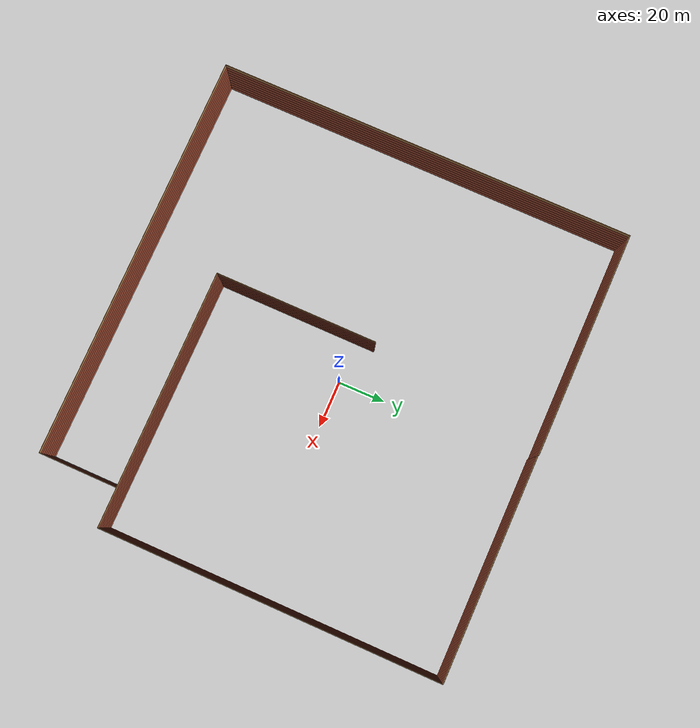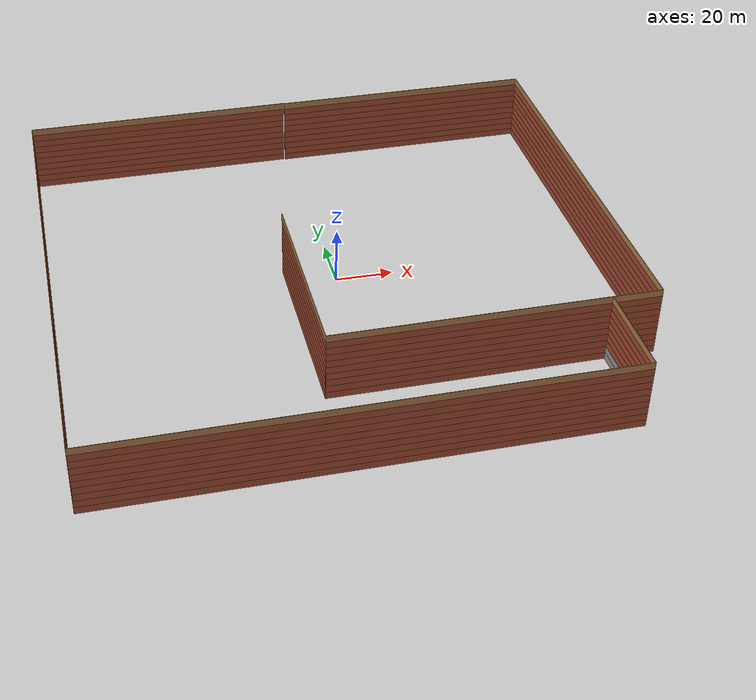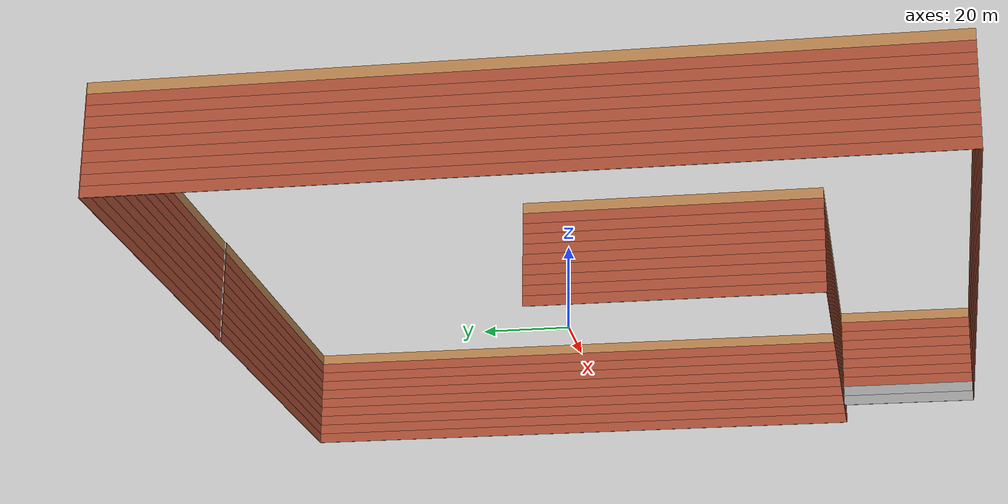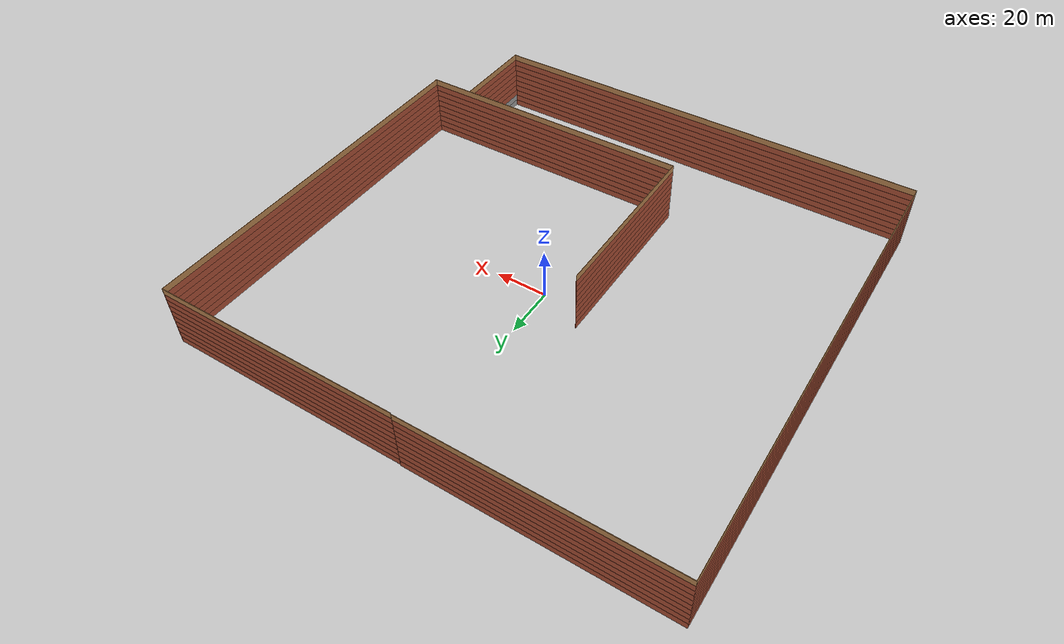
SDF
<?xml version='1.0'?>
<sdf version='1.6'>
  <model name='Prototipo_paredes'>
    <pose frame=''>-2.99252 -5.23308 0 0 -0 0</pose>

    <link name='Wall_147'>
      <collision name='Wall_147_Collision'>
        <geometry>
          <box>
            <size>96 0.15 2.5</size>
          </box>
        </geometry>
        <pose frame=''>0 0 1.25 0 -0 0</pose>
      </collision>
      <visual name='Wall_147_Visual'>
        <pose frame=''>0 0 1.25 0 -0 0</pose>
        <geometry>
          <box>
            <size>96 0.15 2.5</size>
          </box>
        </geometry>
        <material>
          <script>
            <uri>file://media/materials/scripts/gazebo.material</uri>
            <name>Gazebo/Bricks</name>
          </script>
          <ambient>1 1 1 1</ambient>
        </material>
        <meta>
          <layer>0</layer>
        </meta>
      </visual>
      <pose frame=''>-47.1757 88.925 0 0 -0 3.14159</pose>
    </link>
    <link name='Wall_148'>
      <collision name='Wall_148_Collision'>
        <geometry>
          <box>
            <size>178 0.15 2.5</size>
          </box>
        </geometry>
        <pose frame=''>0 0 1.25 0 -0 0</pose>
      </collision>
      <visual name='Wall_148_Visual'>
        <pose frame=''>0 0 1.25 0 -0 0</pose>
        <geometry>
          <box>
            <size>178 0.15 2.5</size>
          </box>
        </geometry>
        <material>
          <script>
            <uri>file://media/materials/scripts/gazebo.material</uri>
            <name>Gazebo/Bricks</name>
          </script>
          <ambient>1 1 1 1</ambient>
        </material>
        <meta>
          <layer>0</layer>
        </meta>
      </visual>
      <pose frame=''>-95.1007 -3e-06 0 0 -0 -1.5708</pose>
    </link>
    <link name='Wall_149'>
      <collision name='Wall_149_Collision'>
        <geometry>
          <box>
            <size>173.5 0.15 2.5</size>
          </box>
        </geometry>
        <pose frame=''>0 0 1.25 0 -0 0</pose>
      </collision>
      <visual name='Wall_149_Visual'>
        <pose frame=''>0 0 1.25 0 -0 0</pose>
        <geometry>
          <box>
            <size>173.5 0.15 2.5</size>
          </box>
        </geometry>
        <material>
          <script>
            <uri>file://media/materials/scripts/gazebo.material</uri>
            <name>Gazebo/Bricks</name>
          </script>
          <ambient>1 1 1 1</ambient>
        </material>
        <meta>
          <layer>0</layer>
        </meta>
      </visual>
      <pose frame=''>-8.42566 -88.925 0 0 -0 0</pose>
    </link>
    <link name='Wall_150'>
      <collision name='Wall_150_Collision'>
        <geometry>
          <box>
            <size>33.25 0.15 2.5</size>
          </box>
        </geometry>
        <pose frame=''>0 0 1.25 0 -0 0</pose>
      </collision>
      <visual name='Wall_150_Visual'>
        <pose frame=''>0 0 1.25 0 -0 0</pose>
        <geometry>
          <box>
            <size>33.25 0.15 2.5</size>
          </box>
        </geometry>
        <material>
          <script>
            <uri>file://media/materials/scripts/gazebo.material</uri>
            <name>Gazebo/Grey</name>
          </script>
          <ambient>1 1 1 1</ambient>
        </material>
        <meta>
          <layer>0</layer>
        </meta>
      </visual>
      <pose frame=''>78.2493 -72.375 0 0 -0 1.5708</pose>
    </link>
    <link name='Wall_256'>
      <collision name='Wall_256_Collision'>
        <geometry>
          <box>
            <size>69 0.15 2.5</size>
          </box>
        </geometry>
        <pose frame=''>0 0 1.25 0 -0 0</pose>
      </collision>
      <visual name='Wall_256_Visual'>
        <pose frame=''>0 0 1.25 0 -0 0</pose>
        <geometry>
          <box>
            <size>69 0.15 2.5</size>
          </box>
        </geometry>
        <material>
          <script>
            <uri>file://media/materials/scripts/gazebo.material</uri>
            <name>Gazebo/Bricks</name>
          </script>
          <ambient>1 1 1 1</ambient>
        </material>
        <meta>
          <layer>1</layer>
        </meta>
      </visual>
      <pose frame=''>-14.4993 -21.2575 2.5 0 -0 -1.5708</pose>
    </link>
    <link name='Wall_257'>
      <collision name='Wall_257_Collision'>
        <geometry>
          <box>
            <size>109.75 0.15 2.5</size>
          </box>
        </geometry>
        <pose frame=''>0 0 1.25 0 -0 0</pose>
      </collision>
      <visual name='Wall_257_Visual'>
        <pose frame=''>0 0 1.25 0 -0 0</pose>
        <geometry>
          <box>
            <size>109.75 0.15 2.5</size>
          </box>
        </geometry>
        <material>
          <script>
            <uri>file://media/materials/scripts/gazebo.material</uri>
            <name>Gazebo/Bricks</name>
          </script>
          <ambient>1 1 1 1</ambient>
        </material>
        <meta>
          <layer>1</layer>
        </meta>
      </visual>
      <pose frame=''>40.3007 -55.6825 2.5 0 -0 0</pose>
    </link>
    <link name='Wall_258'>
      <collision name='Wall_258_Collision'>
        <geometry>
          <box>
            <size>144.5 0.15 2.5</size>
          </box>
        </geometry>
        <pose frame=''>0 0 1.25 0 -0 0</pose>
      </collision>
      <visual name='Wall_258_Visual'>
        <pose frame=''>0 0 1.25 0 -0 0</pose>
        <geometry>
          <box>
            <size>144.5 0.15 2.5</size>
          </box>
        </geometry>
        <material>
          <script>
            <uri>file://media/materials/scripts/gazebo.material</uri>
            <name>Gazebo/Bricks</name>
          </script>
          <ambient>1 1 1 1</ambient>
        </material>
        <meta>
          <layer>1</layer>
        </meta>
      </visual>
      <pose frame=''>95.1007 16.4925 2.5 0 -0 1.5708</pose>
    </link>
    <link name='Wall_259'>
      <collision name='Wall_259_Collision'>
        <geometry>
          <box>
            <size>94 0.15 2.5</size>
          </box>
        </geometry>
        <pose frame=''>0 0 1.25 0 -0 0</pose>
      </collision>
      <visual name='Wall_259_Visual'>
        <pose frame=''>0 0 1.25 0 -0 0</pose>
        <geometry>
          <box>
            <size>94 0.15 2.5</size>
          </box>
        </geometry>
        <material>
          <script>
            <uri>file://media/materials/scripts/gazebo.material</uri>
            <name>Gazebo/Bricks</name>
          </script>
          <ambient>1 1 1 1</ambient>
        </material>
        <meta>
          <layer>1</layer>
        </meta>
      </visual>
      <pose frame=''>48.1757 88.6675 2.5 0 -0 3.14159</pose>
    </link>
    <link name='Wall_260'>
      <collision name='Wall_260_Collision'>
        <geometry>
          <box>
            <size>96 0.15 2.5</size>
          </box>
        </geometry>
        <pose frame=''>0 0 1.25 0 -0 0</pose>
      </collision>
      <visual name='Wall_260_Visual'>
        <pose frame=''>0 0 1.25 0 -0 0</pose>
        <geometry>
          <box>
            <size>96 0.15 2.5</size>
          </box>
        </geometry>
        <material>
          <script>
            <uri>file://media/materials/scripts/gazebo.material</uri>
            <name>Gazebo/Bricks</name>
          </script>
          <ambient>1 1 1 1</ambient>
        </material>
        <meta>
          <layer>1</layer>
        </meta>
      </visual>
      <pose frame=''>-47.1757 88.925 2.5 0 -0 3.14159</pose>
    </link>
    <link name='Wall_261'>
      <collision name='Wall_261_Collision'>
        <geometry>
          <box>
            <size>178 0.15 2.5</size>
          </box>
        </geometry>
        <pose frame=''>0 0 1.25 0 -0 0</pose>
      </collision>
      <visual name='Wall_261_Visual'>
        <pose frame=''>0 0 1.25 0 -0 0</pose>
        <geometry>
          <box>
            <size>178 0.15 2.5</size>
          </box>
        </geometry>
        <material>
          <script>
            <uri>file://media/materials/scripts/gazebo.material</uri>
            <name>Gazebo/Bricks</name>
          </script>
          <ambient>1 1 1 1</ambient>
        </material>
        <meta>
          <layer>1</layer>
        </meta>
      </visual>
      <pose frame=''>-95.1007 -2e-06 2.5 0 -0 -1.5708</pose>
    </link>
    <link name='Wall_262'>
      <collision name='Wall_262_Collision'>
        <geometry>
          <box>
            <size>173.5 0.15 2.5</size>
          </box>
        </geometry>
        <pose frame=''>0 0 1.25 0 -0 0</pose>
      </collision>
      <visual name='Wall_262_Visual'>
        <pose frame=''>0 0 1.25 0 -0 0</pose>
        <geometry>
          <box>
            <size>173.5 0.15 2.5</size>
          </box>
        </geometry>
        <material>
          <script>
            <uri>file://media/materials/scripts/gazebo.material</uri>
            <name>Gazebo/Bricks</name>
          </script>
          <ambient>1 1 1 1</ambient>
        </material>
        <meta>
          <layer>1</layer>
        </meta>
      </visual>
      <pose frame=''>-8.42566 -88.925 2.5 0 -0 0</pose>
    </link>
    <link name='Wall_263'>
      <collision name='Wall_263_Collision'>
        <geometry>
          <box>
            <size>33.25 0.15 2.5</size>
          </box>
        </geometry>
        <pose frame=''>0 0 1.25 0 -0 0</pose>
      </collision>
      <visual name='Wall_263_Visual'>
        <pose frame=''>0 0 1.25 0 -0 0</pose>
        <geometry>
          <box>
            <size>33.25 0.15 2.5</size>
          </box>
        </geometry>
        <material>
          <script>
            <uri>file://media/materials/scripts/gazebo.material</uri>
            <name>Gazebo/Grey</name>
          </script>
          <ambient>1 1 1 1</ambient>
        </material>
        <meta>
          <layer>1</layer>
        </meta>
      </visual>
      <pose frame=''>78.2493 -72.375 2.5 0 -0 1.5708</pose>
    </link>
    <link name='Wall_264'>
      <collision name='Wall_264_Collision'>
        <geometry>
          <box>
            <size>69 0.15 2.5</size>
          </box>
        </geometry>
        <pose frame=''>0 0 1.25 0 -0 0</pose>
      </collision>
      <visual name='Wall_264_Visual'>
        <pose frame=''>0 0 1.25 0 -0 0</pose>
        <geometry>
          <box>
            <size>69 0.15 2.5</size>
          </box>
        </geometry>
        <material>
          <script>
            <uri>file://media/materials/scripts/gazebo.material</uri>
            <name>Gazebo/Bricks</name>
          </script>
          <ambient>1 1 1 1</ambient>
        </material>
        <meta>
          <layer>2</layer>
        </meta>
      </visual>
      <pose frame=''>-14.4993 -21.2575 5 0 -0 -1.5708</pose>
    </link>
    <link name='Wall_265'>
      <collision name='Wall_265_Collision'>
        <geometry>
          <box>
            <size>109.75 0.15 2.5</size>
          </box>
        </geometry>
        <pose frame=''>0 0 1.25 0 -0 0</pose>
      </collision>
      <visual name='Wall_265_Visual'>
        <pose frame=''>0 0 1.25 0 -0 0</pose>
        <geometry>
          <box>
            <size>109.75 0.15 2.5</size>
          </box>
        </geometry>
        <material>
          <script>
            <uri>file://media/materials/scripts/gazebo.material</uri>
            <name>Gazebo/Bricks</name>
          </script>
          <ambient>1 1 1 1</ambient>
        </material>
        <meta>
          <layer>2</layer>
        </meta>
      </visual>
      <pose frame=''>40.3007 -55.6825 5 0 -0 0</pose>
    </link>
    <link name='Wall_266'>
      <collision name='Wall_266_Collision'>
        <geometry>
          <box>
            <size>144.5 0.15 2.5</size>
          </box>
        </geometry>
        <pose frame=''>0 0 1.25 0 -0 0</pose>
      </collision>
      <visual name='Wall_266_Visual'>
        <pose frame=''>0 0 1.25 0 -0 0</pose>
        <geometry>
          <box>
            <size>144.5 0.15 2.5</size>
          </box>
        </geometry>
        <material>
          <script>
            <uri>file://media/materials/scripts/gazebo.material</uri>
            <name>Gazebo/Bricks</name>
          </script>
          <ambient>1 1 1 1</ambient>
        </material>
        <meta>
          <layer>2</layer>
        </meta>
      </visual>
      <pose frame=''>95.1007 16.4925 5 0 -0 1.5708</pose>
    </link>
    <link name='Wall_267'>
      <collision name='Wall_267_Collision'>
        <geometry>
          <box>
            <size>94 0.15 2.5</size>
          </box>
        </geometry>
        <pose frame=''>0 0 1.25 0 -0 0</pose>
      </collision>
      <visual name='Wall_267_Visual'>
        <pose frame=''>0 0 1.25 0 -0 0</pose>
        <geometry>
          <box>
            <size>94 0.15 2.5</size>
          </box>
        </geometry>
        <material>
          <script>
            <uri>file://media/materials/scripts/gazebo.material</uri>
            <name>Gazebo/Bricks</name>
          </script>
          <ambient>1 1 1 1</ambient>
        </material>
        <meta>
          <layer>2</layer>
        </meta>
      </visual>
      <pose frame=''>48.1757 88.6675 5 0 -0 3.14159</pose>
    </link>
    <link name='Wall_268'>
      <collision name='Wall_268_Collision'>
        <geometry>
          <box>
            <size>96 0.15 2.5</size>
          </box>
        </geometry>
        <pose frame=''>0 0 1.25 0 -0 0</pose>
      </collision>
      <visual name='Wall_268_Visual'>
        <pose frame=''>0 0 1.25 0 -0 0</pose>
        <geometry>
          <box>
            <size>96 0.15 2.5</size>
          </box>
        </geometry>
        <material>
          <script>
            <uri>file://media/materials/scripts/gazebo.material</uri>
            <name>Gazebo/Bricks</name>
          </script>
          <ambient>1 1 1 1</ambient>
        </material>
        <meta>
          <layer>2</layer>
        </meta>
      </visual>
      <pose frame=''>-47.1757 88.925 5 0 -0 3.14159</pose>
    </link>
    <link name='Wall_269'>
      <collision name='Wall_269_Collision'>
        <geometry>
          <box>
            <size>178 0.15 2.5</size>
          </box>
        </geometry>
        <pose frame=''>0 0 1.25 0 -0 0</pose>
      </collision>
      <visual name='Wall_269_Visual'>
        <pose frame=''>0 0 1.25 0 -0 0</pose>
        <geometry>
          <box>
            <size>178 0.15 2.5</size>
          </box>
        </geometry>
        <material>
          <script>
            <uri>file://media/materials/scripts/gazebo.material</uri>
            <name>Gazebo/Bricks</name>
          </script>
          <ambient>1 1 1 1</ambient>
        </material>
        <meta>
          <layer>2</layer>
        </meta>
      </visual>
      <pose frame=''>-95.1007 -2e-06 5 0 -0 -1.5708</pose>
    </link>
    <link name='Wall_270'>
      <collision name='Wall_270_Collision'>
        <geometry>
          <box>
            <size>173.5 0.15 2.5</size>
          </box>
        </geometry>
        <pose frame=''>0 0 1.25 0 -0 0</pose>
      </collision>
      <visual name='Wall_270_Visual'>
        <pose frame=''>0 0 1.25 0 -0 0</pose>
        <geometry>
          <box>
            <size>173.5 0.15 2.5</size>
          </box>
        </geometry>
        <material>
          <script>
            <uri>file://media/materials/scripts/gazebo.material</uri>
            <name>Gazebo/Bricks</name>
          </script>
          <ambient>1 1 1 1</ambient>
        </material>
        <meta>
          <layer>2</layer>
        </meta>
      </visual>
      <pose frame=''>-8.42566 -88.925 5 0 -0 0</pose>
    </link>
    <link name='Wall_271'>
      <collision name='Wall_271_Collision'>
        <geometry>
          <box>
            <size>33.25 0.15 2.5</size>
          </box>
        </geometry>
        <pose frame=''>0 0 1.25 0 -0 0</pose>
      </collision>
      <visual name='Wall_271_Visual'>
        <pose frame=''>0 0 1.25 0 -0 0</pose>
        <geometry>
          <box>
            <size>33.25 0.15 2.5</size>
          </box>
        </geometry>
        <material>
          <script>
            <uri>file://media/materials/scripts/gazebo.material</uri>
            <name>Gazebo/Bricks</name>
          </script>
          <ambient>1 1 1 1</ambient>
        </material>
        <meta>
          <layer>2</layer>
        </meta>
      </visual>
      <pose frame=''>78.2493 -72.375 5 0 -0 1.5708</pose>
    </link>
    <link name='Wall_272'>
      <collision name='Wall_272_Collision'>
        <geometry>
          <box>
            <size>69 0.15 2.5</size>
          </box>
        </geometry>
        <pose frame=''>0 0 1.25 0 -0 0</pose>
      </collision>
      <visual name='Wall_272_Visual'>
        <pose frame=''>0 0 1.25 0 -0 0</pose>
        <geometry>
          <box>
            <size>69 0.15 2.5</size>
          </box>
        </geometry>
        <material>
          <script>
            <uri>file://media/materials/scripts/gazebo.material</uri>
            <name>Gazebo/Bricks</name>
          </script>
          <ambient>1 1 1 1</ambient>
        </material>
        <meta>
          <layer>3</layer>
        </meta>
      </visual>
      <pose frame=''>-14.4993 -21.2575 7.5 0 -0 -1.5708</pose>
    </link>
    <link name='Wall_273'>
      <collision name='Wall_273_Collision'>
        <geometry>
          <box>
            <size>109.75 0.15 2.5</size>
          </box>
        </geometry>
        <pose frame=''>0 0 1.25 0 -0 0</pose>
      </collision>
      <visual name='Wall_273_Visual'>
        <pose frame=''>0 0 1.25 0 -0 0</pose>
        <geometry>
          <box>
            <size>109.75 0.15 2.5</size>
          </box>
        </geometry>
        <material>
          <script>
            <uri>file://media/materials/scripts/gazebo.material</uri>
            <name>Gazebo/Bricks</name>
          </script>
          <ambient>1 1 1 1</ambient>
        </material>
        <meta>
          <layer>3</layer>
        </meta>
      </visual>
      <pose frame=''>40.3007 -55.6825 7.5 0 -0 0</pose>
    </link>
    <link name='Wall_274'>
      <collision name='Wall_274_Collision'>
        <geometry>
          <box>
            <size>144.5 0.15 2.5</size>
          </box>
        </geometry>
        <pose frame=''>0 0 1.25 0 -0 0</pose>
      </collision>
      <visual name='Wall_274_Visual'>
        <pose frame=''>0 0 1.25 0 -0 0</pose>
        <geometry>
          <box>
            <size>144.5 0.15 2.5</size>
          </box>
        </geometry>
        <material>
          <script>
            <uri>file://media/materials/scripts/gazebo.material</uri>
            <name>Gazebo/Bricks</name>
          </script>
          <ambient>1 1 1 1</ambient>
        </material>
        <meta>
          <layer>3</layer>
        </meta>
      </visual>
      <pose frame=''>95.1007 16.4925 7.5 0 -0 1.5708</pose>
    </link>
    <link name='Wall_275'>
      <collision name='Wall_275_Collision'>
        <geometry>
          <box>
            <size>94 0.15 2.5</size>
          </box>
        </geometry>
        <pose frame=''>0 0 1.25 0 -0 0</pose>
      </collision>
      <visual name='Wall_275_Visual'>
        <pose frame=''>0 0 1.25 0 -0 0</pose>
        <geometry>
          <box>
            <size>94 0.15 2.5</size>
          </box>
        </geometry>
        <material>
          <script>
            <uri>file://media/materials/scripts/gazebo.material</uri>
            <name>Gazebo/Bricks</name>
          </script>
          <ambient>1 1 1 1</ambient>
        </material>
        <meta>
          <layer>3</layer>
        </meta>
      </visual>
      <pose frame=''>48.1757 88.6675 7.5 0 -0 3.14159</pose>
    </link>
    <link name='Wall_276'>
      <collision name='Wall_276_Collision'>
        <geometry>
          <box>
            <size>96 0.15 2.5</size>
          </box>
        </geometry>
        <pose frame=''>0 0 1.25 0 -0 0</pose>
      </collision>
      <visual name='Wall_276_Visual'>
        <pose frame=''>0 0 1.25 0 -0 0</pose>
        <geometry>
          <box>
            <size>96 0.15 2.5</size>
          </box>
        </geometry>
        <material>
          <script>
            <uri>file://media/materials/scripts/gazebo.material</uri>
            <name>Gazebo/Bricks</name>
          </script>
          <ambient>1 1 1 1</ambient>
        </material>
        <meta>
          <layer>3</layer>
        </meta>
      </visual>
      <pose frame=''>-47.1757 88.925 7.5 0 -0 3.14159</pose>
    </link>
    <link name='Wall_277'>
      <collision name='Wall_277_Collision'>
        <geometry>
          <box>
            <size>178 0.15 2.5</size>
          </box>
        </geometry>
        <pose frame=''>0 0 1.25 0 -0 0</pose>
      </collision>
      <visual name='Wall_277_Visual'>
        <pose frame=''>0 0 1.25 0 -0 0</pose>
        <geometry>
          <box>
            <size>178 0.15 2.5</size>
          </box>
        </geometry>
        <material>
          <script>
            <uri>file://media/materials/scripts/gazebo.material</uri>
            <name>Gazebo/Bricks</name>
          </script>
          <ambient>1 1 1 1</ambient>
        </material>
        <meta>
          <layer>3</layer>
        </meta>
      </visual>
      <pose frame=''>-95.1007 -2e-06 7.5 0 -0 -1.5708</pose>
    </link>
    <link name='Wall_278'>
      <collision name='Wall_278_Collision'>
        <geometry>
          <box>
            <size>173.5 0.15 2.5</size>
          </box>
        </geometry>
        <pose frame=''>0 0 1.25 0 -0 0</pose>
      </collision>
      <visual name='Wall_278_Visual'>
        <pose frame=''>0 0 1.25 0 -0 0</pose>
        <geometry>
          <box>
            <size>173.5 0.15 2.5</size>
          </box>
        </geometry>
        <material>
          <script>
            <uri>file://media/materials/scripts/gazebo.material</uri>
            <name>Gazebo/Bricks</name>
          </script>
          <ambient>1 1 1 1</ambient>
        </material>
        <meta>
          <layer>3</layer>
        </meta>
      </visual>
      <pose frame=''>-8.42566 -88.925 7.5 0 -0 0</pose>
    </link>
    <link name='Wall_279'>
      <collision name='Wall_279_Collision'>
        <geometry>
          <box>
            <size>33.25 0.15 2.5</size>
          </box>
        </geometry>
        <pose frame=''>0 0 1.25 0 -0 0</pose>
      </collision>
      <visual name='Wall_279_Visual'>
        <pose frame=''>0 0 1.25 0 -0 0</pose>
        <geometry>
          <box>
            <size>33.25 0.15 2.5</size>
          </box>
        </geometry>
        <material>
          <script>
            <uri>file://media/materials/scripts/gazebo.material</uri>
            <name>Gazebo/Bricks</name>
          </script>
          <ambient>1 1 1 1</ambient>
        </material>
        <meta>
          <layer>3</layer>
        </meta>
      </visual>
      <pose frame=''>78.2493 -72.375 7.5 0 -0 1.5708</pose>
    </link>
    <link name='Wall_280'>
      <collision name='Wall_280_Collision'>
        <geometry>
          <box>
            <size>69 0.15 2.5</size>
          </box>
        </geometry>
        <pose frame=''>0 0 1.25 0 -0 0</pose>
      </collision>
      <visual name='Wall_280_Visual'>
        <pose frame=''>0 0 1.25 0 -0 0</pose>
        <geometry>
          <box>
            <size>69 0.15 2.5</size>
          </box>
        </geometry>
        <material>
          <script>
            <uri>file://media/materials/scripts/gazebo.material</uri>
            <name>Gazebo/Bricks</name>
          </script>
          <ambient>1 1 1 1</ambient>
        </material>
        <meta>
          <layer>4</layer>
        </meta>
      </visual>
      <pose frame=''>-14.4993 -21.2575 10 0 -0 -1.5708</pose>
    </link>
    <link name='Wall_281'>
      <collision name='Wall_281_Collision'>
        <geometry>
          <box>
            <size>109.75 0.15 2.5</size>
          </box>
        </geometry>
        <pose frame=''>0 0 1.25 0 -0 0</pose>
      </collision>
      <visual name='Wall_281_Visual'>
        <pose frame=''>0 0 1.25 0 -0 0</pose>
        <geometry>
          <box>
            <size>109.75 0.15 2.5</size>
          </box>
        </geometry>
        <material>
          <script>
            <uri>file://media/materials/scripts/gazebo.material</uri>
            <name>Gazebo/Bricks</name>
          </script>
          <ambient>1 1 1 1</ambient>
        </material>
        <meta>
          <layer>4</layer>
        </meta>
      </visual>
      <pose frame=''>40.3007 -55.6825 10 0 -0 0</pose>
    </link>
    <link name='Wall_282'>
      <collision name='Wall_282_Collision'>
        <geometry>
          <box>
            <size>144.5 0.15 2.5</size>
          </box>
        </geometry>
        <pose frame=''>0 0 1.25 0 -0 0</pose>
      </collision>
      <visual name='Wall_282_Visual'>
        <pose frame=''>0 0 1.25 0 -0 0</pose>
        <geometry>
          <box>
            <size>144.5 0.15 2.5</size>
          </box>
        </geometry>
        <material>
          <script>
            <uri>file://media/materials/scripts/gazebo.material</uri>
            <name>Gazebo/Bricks</name>
          </script>
          <ambient>1 1 1 1</ambient>
        </material>
        <meta>
          <layer>4</layer>
        </meta>
      </visual>
      <pose frame=''>95.1007 16.4925 10 0 -0 1.5708</pose>
    </link>
    <link name='Wall_283'>
      <collision name='Wall_283_Collision'>
        <geometry>
          <box>
            <size>94 0.15 2.5</size>
          </box>
        </geometry>
        <pose frame=''>0 0 1.25 0 -0 0</pose>
      </collision>
      <visual name='Wall_283_Visual'>
        <pose frame=''>0 0 1.25 0 -0 0</pose>
        <geometry>
          <box>
            <size>94 0.15 2.5</size>
          </box>
        </geometry>
        <material>
          <script>
            <uri>file://media/materials/scripts/gazebo.material</uri>
            <name>Gazebo/Bricks</name>
          </script>
          <ambient>1 1 1 1</ambient>
        </material>
        <meta>
          <layer>4</layer>
        </meta>
      </visual>
      <pose frame=''>48.1757 88.6675 10 0 -0 3.14159</pose>
    </link>
    <link name='Wall_284'>
      <collision name='Wall_284_Collision'>
        <geometry>
          <box>
            <size>96 0.15 2.5</size>
          </box>
        </geometry>
        <pose frame=''>0 0 1.25 0 -0 0</pose>
      </collision>
      <visual name='Wall_284_Visual'>
        <pose frame=''>0 0 1.25 0 -0 0</pose>
        <geometry>
          <box>
            <size>96 0.15 2.5</size>
          </box>
        </geometry>
        <material>
          <script>
            <uri>file://media/materials/scripts/gazebo.material</uri>
            <name>Gazebo/Bricks</name>
          </script>
          <ambient>1 1 1 1</ambient>
        </material>
        <meta>
          <layer>4</layer>
        </meta>
      </visual>
      <pose frame=''>-47.1757 88.925 10 0 -0 3.14159</pose>
    </link>
    <link name='Wall_285'>
      <collision name='Wall_285_Collision'>
        <geometry>
          <box>
            <size>178 0.15 2.5</size>
          </box>
        </geometry>
        <pose frame=''>0 0 1.25 0 -0 0</pose>
      </collision>
      <visual name='Wall_285_Visual'>
        <pose frame=''>0 0 1.25 0 -0 0</pose>
        <geometry>
          <box>
            <size>178 0.15 2.5</size>
          </box>
        </geometry>
        <material>
          <script>
            <uri>file://media/materials/scripts/gazebo.material</uri>
            <name>Gazebo/Bricks</name>
          </script>
          <ambient>1 1 1 1</ambient>
        </material>
        <meta>
          <layer>4</layer>
        </meta>
      </visual>
      <pose frame=''>-95.1007 -2e-06 10 0 -0 -1.5708</pose>
    </link>
    <link name='Wall_286'>
      <collision name='Wall_286_Collision'>
        <geometry>
          <box>
            <size>173.5 0.15 2.5</size>
          </box>
        </geometry>
        <pose frame=''>0 0 1.25 0 -0 0</pose>
      </collision>
      <visual name='Wall_286_Visual'>
        <pose frame=''>0 0 1.25 0 -0 0</pose>
        <geometry>
          <box>
            <size>173.5 0.15 2.5</size>
          </box>
        </geometry>
        <material>
          <script>
            <uri>file://media/materials/scripts/gazebo.material</uri>
            <name>Gazebo/Bricks</name>
          </script>
          <ambient>1 1 1 1</ambient>
        </material>
        <meta>
          <layer>4</layer>
        </meta>
      </visual>
      <pose frame=''>-8.42566 -88.925 10 0 -0 0</pose>
    </link>
    <link name='Wall_287'>
      <collision name='Wall_287_Collision'>
        <geometry>
          <box>
            <size>33.25 0.15 2.5</size>
          </box>
        </geometry>
        <pose frame=''>0 0 1.25 0 -0 0</pose>
      </collision>
      <visual name='Wall_287_Visual'>
        <pose frame=''>0 0 1.25 0 -0 0</pose>
        <geometry>
          <box>
            <size>33.25 0.15 2.5</size>
          </box>
        </geometry>
        <material>
          <script>
            <uri>file://media/materials/scripts/gazebo.material</uri>
            <name>Gazebo/Bricks</name>
          </script>
          <ambient>1 1 1 1</ambient>
        </material>
        <meta>
          <layer>4</layer>
        </meta>
      </visual>
      <pose frame=''>78.2493 -72.375 10 0 -0 1.5708</pose>
    </link>
    <link name='Wall_288'>
      <collision name='Wall_288_Collision'>
        <geometry>
          <box>
            <size>69 0.15 2.5</size>
          </box>
        </geometry>
        <pose frame=''>0 0 1.25 0 -0 0</pose>
      </collision>
      <visual name='Wall_288_Visual'>
        <pose frame=''>0 0 1.25 0 -0 0</pose>
        <geometry>
          <box>
            <size>69 0.15 2.5</size>
          </box>
        </geometry>
        <material>
          <script>
            <uri>file://media/materials/scripts/gazebo.material</uri>
            <name>Gazebo/Bricks</name>
          </script>
          <ambient>1 1 1 1</ambient>
        </material>
        <meta>
          <layer>5</layer>
        </meta>
      </visual>
      <pose frame=''>-14.4993 -21.2575 12.5 0 -0 -1.5708</pose>
    </link>
    <link name='Wall_289'>
      <collision name='Wall_289_Collision'>
        <geometry>
          <box>
            <size>109.75 0.15 2.5</size>
          </box>
        </geometry>
        <pose frame=''>0 0 1.25 0 -0 0</pose>
      </collision>
      <visual name='Wall_289_Visual'>
        <pose frame=''>0 0 1.25 0 -0 0</pose>
        <geometry>
          <box>
            <size>109.75 0.15 2.5</size>
          </box>
        </geometry>
        <material>
          <script>
            <uri>file://media/materials/scripts/gazebo.material</uri>
            <name>Gazebo/Bricks</name>
          </script>
          <ambient>1 1 1 1</ambient>
        </material>
        <meta>
          <layer>5</layer>
        </meta>
      </visual>
      <pose frame=''>40.3007 -55.6825 12.5 0 -0 0</pose>
    </link>
    <link name='Wall_290'>
      <collision name='Wall_290_Collision'>
        <geometry>
          <box>
            <size>144.5 0.15 2.5</size>
          </box>
        </geometry>
        <pose frame=''>0 0 1.25 0 -0 0</pose>
      </collision>
      <visual name='Wall_290_Visual'>
        <pose frame=''>0 0 1.25 0 -0 0</pose>
        <geometry>
          <box>
            <size>144.5 0.15 2.5</size>
          </box>
        </geometry>
        <material>
          <script>
            <uri>file://media/materials/scripts/gazebo.material</uri>
            <name>Gazebo/Bricks</name>
          </script>
          <ambient>1 1 1 1</ambient>
        </material>
        <meta>
          <layer>5</layer>
        </meta>
      </visual>
      <pose frame=''>95.1007 16.4925 12.5 0 -0 1.5708</pose>
    </link>
    <link name='Wall_291'>
      <collision name='Wall_291_Collision'>
        <geometry>
          <box>
            <size>94 0.15 2.5</size>
          </box>
        </geometry>
        <pose frame=''>0 0 1.25 0 -0 0</pose>
      </collision>
      <visual name='Wall_291_Visual'>
        <pose frame=''>0 0 1.25 0 -0 0</pose>
        <geometry>
          <box>
            <size>94 0.15 2.5</size>
          </box>
        </geometry>
        <material>
          <script>
            <uri>file://media/materials/scripts/gazebo.material</uri>
            <name>Gazebo/Bricks</name>
          </script>
          <ambient>1 1 1 1</ambient>
        </material>
        <meta>
          <layer>5</layer>
        </meta>
      </visual>
      <pose frame=''>48.1757 88.6675 12.5 0 -0 3.14159</pose>
    </link>
    <link name='Wall_292'>
      <collision name='Wall_292_Collision'>
        <geometry>
          <box>
            <size>96 0.15 2.5</size>
          </box>
        </geometry>
        <pose frame=''>0 0 1.25 0 -0 0</pose>
      </collision>
      <visual name='Wall_292_Visual'>
        <pose frame=''>0 0 1.25 0 -0 0</pose>
        <geometry>
          <box>
            <size>96 0.15 2.5</size>
          </box>
        </geometry>
        <material>
          <script>
            <uri>file://media/materials/scripts/gazebo.material</uri>
            <name>Gazebo/Bricks</name>
          </script>
          <ambient>1 1 1 1</ambient>
        </material>
        <meta>
          <layer>5</layer>
        </meta>
      </visual>
      <pose frame=''>-47.1757 88.925 12.5 0 -0 3.14159</pose>
    </link>
    <link name='Wall_293'>
      <collision name='Wall_293_Collision'>
        <geometry>
          <box>
            <size>178 0.15 2.5</size>
          </box>
        </geometry>
        <pose frame=''>0 0 1.25 0 -0 0</pose>
      </collision>
      <visual name='Wall_293_Visual'>
        <pose frame=''>0 0 1.25 0 -0 0</pose>
        <geometry>
          <box>
            <size>178 0.15 2.5</size>
          </box>
        </geometry>
        <material>
          <script>
            <uri>file://media/materials/scripts/gazebo.material</uri>
            <name>Gazebo/Bricks</name>
          </script>
          <ambient>1 1 1 1</ambient>
        </material>
        <meta>
          <layer>5</layer>
        </meta>
      </visual>
      <pose frame=''>-95.1007 -2e-06 12.5 0 -0 -1.5708</pose>
    </link>
    <link name='Wall_294'>
      <collision name='Wall_294_Collision'>
        <geometry>
          <box>
            <size>173.5 0.15 2.5</size>
          </box>
        </geometry>
        <pose frame=''>0 0 1.25 0 -0 0</pose>
      </collision>
      <visual name='Wall_294_Visual'>
        <pose frame=''>0 0 1.25 0 -0 0</pose>
        <geometry>
          <box>
            <size>173.5 0.15 2.5</size>
          </box>
        </geometry>
        <material>
          <script>
            <uri>file://media/materials/scripts/gazebo.material</uri>
            <name>Gazebo/Bricks</name>
          </script>
          <ambient>1 1 1 1</ambient>
        </material>
        <meta>
          <layer>5</layer>
        </meta>
      </visual>
      <pose frame=''>-8.42566 -88.925 12.5 0 -0 0</pose>
    </link>
    <link name='Wall_295'>
      <collision name='Wall_295_Collision'>
        <geometry>
          <box>
            <size>33.25 0.15 2.5</size>
          </box>
        </geometry>
        <pose frame=''>0 0 1.25 0 -0 0</pose>
      </collision>
      <visual name='Wall_295_Visual'>
        <pose frame=''>0 0 1.25 0 -0 0</pose>
        <geometry>
          <box>
            <size>33.25 0.15 2.5</size>
          </box>
        </geometry>
        <material>
          <script>
            <uri>file://media/materials/scripts/gazebo.material</uri>
            <name>Gazebo/Bricks</name>
          </script>
          <ambient>1 1 1 1</ambient>
        </material>
        <meta>
          <layer>5</layer>
        </meta>
      </visual>
      <pose frame=''>78.2493 -72.375 12.5 0 -0 1.5708</pose>
    </link>
    <link name='Wall_296'>
      <collision name='Wall_296_Collision'>
        <geometry>
          <box>
            <size>69 0.15 2.5</size>
          </box>
        </geometry>
        <pose frame=''>0 0 1.25 0 -0 0</pose>
      </collision>
      <visual name='Wall_296_Visual'>
        <pose frame=''>0 0 1.25 0 -0 0</pose>
        <geometry>
          <box>
            <size>69 0.15 2.5</size>
          </box>
        </geometry>
        <material>
          <script>
            <uri>file://media/materials/scripts/gazebo.material</uri>
            <name>Gazebo/Bricks</name>
          </script>
          <ambient>1 1 1 1</ambient>
        </material>
        <meta>
          <layer>6</layer>
        </meta>
      </visual>
      <pose frame=''>-14.4993 -21.2575 15 0 -0 -1.5708</pose>
    </link>
    <link name='Wall_297'>
      <collision name='Wall_297_Collision'>
        <geometry>
          <box>
            <size>109.75 0.15 2.5</size>
          </box>
        </geometry>
        <pose frame=''>0 0 1.25 0 -0 0</pose>
      </collision>
      <visual name='Wall_297_Visual'>
        <pose frame=''>0 0 1.25 0 -0 0</pose>
        <geometry>
          <box>
            <size>109.75 0.15 2.5</size>
          </box>
        </geometry>
        <material>
          <script>
            <uri>file://media/materials/scripts/gazebo.material</uri>
            <name>Gazebo/Bricks</name>
          </script>
          <ambient>1 1 1 1</ambient>
        </material>
        <meta>
          <layer>6</layer>
        </meta>
      </visual>
      <pose frame=''>40.3007 -55.6825 15 0 -0 0</pose>
    </link>
    <link name='Wall_298'>
      <collision name='Wall_298_Collision'>
        <geometry>
          <box>
            <size>144.5 0.15 2.5</size>
          </box>
        </geometry>
        <pose frame=''>0 0 1.25 0 -0 0</pose>
      </collision>
      <visual name='Wall_298_Visual'>
        <pose frame=''>0 0 1.25 0 -0 0</pose>
        <geometry>
          <box>
            <size>144.5 0.15 2.5</size>
          </box>
        </geometry>
        <material>
          <script>
            <uri>file://media/materials/scripts/gazebo.material</uri>
            <name>Gazebo/Bricks</name>
          </script>
          <ambient>1 1 1 1</ambient>
        </material>
        <meta>
          <layer>6</layer>
        </meta>
      </visual>
      <pose frame=''>95.1007 16.4925 15 0 -0 1.5708</pose>
    </link>
    <link name='Wall_299'>
      <collision name='Wall_299_Collision'>
        <geometry>
          <box>
            <size>94 0.15 2.5</size>
          </box>
        </geometry>
        <pose frame=''>0 0 1.25 0 -0 0</pose>
      </collision>
      <visual name='Wall_299_Visual'>
        <pose frame=''>0 0 1.25 0 -0 0</pose>
        <geometry>
          <box>
            <size>94 0.15 2.5</size>
          </box>
        </geometry>
        <material>
          <script>
            <uri>file://media/materials/scripts/gazebo.material</uri>
            <name>Gazebo/Bricks</name>
          </script>
          <ambient>1 1 1 1</ambient>
        </material>
        <meta>
          <layer>6</layer>
        </meta>
      </visual>
      <pose frame=''>48.1757 88.6675 15 0 -0 3.14159</pose>
    </link>
    <link name='Wall_300'>
      <collision name='Wall_300_Collision'>
        <geometry>
          <box>
            <size>96 0.15 2.5</size>
          </box>
        </geometry>
        <pose frame=''>0 0 1.25 0 -0 0</pose>
      </collision>
      <visual name='Wall_300_Visual'>
        <pose frame=''>0 0 1.25 0 -0 0</pose>
        <geometry>
          <box>
            <size>96 0.15 2.5</size>
          </box>
        </geometry>
        <material>
          <script>
            <uri>file://media/materials/scripts/gazebo.material</uri>
            <name>Gazebo/Bricks</name>
          </script>
          <ambient>1 1 1 1</ambient>
        </material>
        <meta>
          <layer>6</layer>
        </meta>
      </visual>
      <pose frame=''>-47.1757 88.925 15 0 -0 3.14159</pose>
    </link>
    <link name='Wall_301'>
      <collision name='Wall_301_Collision'>
        <geometry>
          <box>
            <size>178 0.15 2.5</size>
          </box>
        </geometry>
        <pose frame=''>0 0 1.25 0 -0 0</pose>
      </collision>
      <visual name='Wall_301_Visual'>
        <pose frame=''>0 0 1.25 0 -0 0</pose>
        <geometry>
          <box>
            <size>178 0.15 2.5</size>
          </box>
        </geometry>
        <material>
          <script>
            <uri>file://media/materials/scripts/gazebo.material</uri>
            <name>Gazebo/Bricks</name>
          </script>
          <ambient>1 1 1 1</ambient>
        </material>
        <meta>
          <layer>6</layer>
        </meta>
      </visual>
      <pose frame=''>-95.1007 -2e-06 15 0 -0 -1.5708</pose>
    </link>
    <link name='Wall_302'>
      <collision name='Wall_302_Collision'>
        <geometry>
          <box>
            <size>173.5 0.15 2.5</size>
          </box>
        </geometry>
        <pose frame=''>0 0 1.25 0 -0 0</pose>
      </collision>
      <visual name='Wall_302_Visual'>
        <pose frame=''>0 0 1.25 0 -0 0</pose>
        <geometry>
          <box>
            <size>173.5 0.15 2.5</size>
          </box>
        </geometry>
        <material>
          <script>
            <uri>file://media/materials/scripts/gazebo.material</uri>
            <name>Gazebo/Bricks</name>
          </script>
          <ambient>1 1 1 1</ambient>
        </material>
        <meta>
          <layer>6</layer>
        </meta>
      </visual>
      <pose frame=''>-8.42566 -88.925 15 0 -0 0</pose>
    </link>
    <link name='Wall_303'>
      <collision name='Wall_303_Collision'>
        <geometry>
          <box>
            <size>33.25 0.15 2.5</size>
          </box>
        </geometry>
        <pose frame=''>0 0 1.25 0 -0 0</pose>
      </collision>
      <visual name='Wall_303_Visual'>
        <pose frame=''>0 0 1.25 0 -0 0</pose>
        <geometry>
          <box>
            <size>33.25 0.15 2.5</size>
          </box>
        </geometry>
        <material>
          <script>
            <uri>file://media/materials/scripts/gazebo.material</uri>
            <name>Gazebo/Bricks</name>
          </script>
          <ambient>1 1 1 1</ambient>
        </material>
        <meta>
          <layer>6</layer>
        </meta>
      </visual>
      <pose frame=''>78.2493 -72.375 15 0 -0 1.5708</pose>
    </link>
    <link name='Wall_304'>
      <collision name='Wall_304_Collision'>
        <geometry>
          <box>
            <size>69 0.15 2.5</size>
          </box>
        </geometry>
        <pose frame=''>0 0 1.25 0 -0 0</pose>
      </collision>
      <visual name='Wall_304_Visual'>
        <pose frame=''>0 0 1.25 0 -0 0</pose>
        <geometry>
          <box>
            <size>69 0.15 2.5</size>
          </box>
        </geometry>
        <material>
          <script>
            <uri>file://media/materials/scripts/gazebo.material</uri>
            <name>Gazebo/Bricks</name>
          </script>
          <ambient>1 1 1 1</ambient>
        </material>
        <meta>
          <layer>7</layer>
        </meta>
      </visual>
      <pose frame=''>-14.4993 -21.2575 17.5 0 -0 -1.5708</pose>
    </link>
    <link name='Wall_305'>
      <collision name='Wall_305_Collision'>
        <geometry>
          <box>
            <size>109.75 0.15 2.5</size>
          </box>
        </geometry>
        <pose frame=''>0 0 1.25 0 -0 0</pose>
      </collision>
      <visual name='Wall_305_Visual'>
        <pose frame=''>0 0 1.25 0 -0 0</pose>
        <geometry>
          <box>
            <size>109.75 0.15 2.5</size>
          </box>
        </geometry>
        <material>
          <script>
            <uri>file://media/materials/scripts/gazebo.material</uri>
            <name>Gazebo/Bricks</name>
          </script>
          <ambient>1 1 1 1</ambient>
        </material>
        <meta>
          <layer>7</layer>
        </meta>
      </visual>
      <pose frame=''>40.3007 -55.6825 17.5 0 -0 0</pose>
    </link>
    <link name='Wall_306'>
      <collision name='Wall_306_Collision'>
        <geometry>
          <box>
            <size>144.5 0.15 2.5</size>
          </box>
        </geometry>
        <pose frame=''>0 0 1.25 0 -0 0</pose>
      </collision>
      <visual name='Wall_306_Visual'>
        <pose frame=''>0 0 1.25 0 -0 0</pose>
        <geometry>
          <box>
            <size>144.5 0.15 2.5</size>
          </box>
        </geometry>
        <material>
          <script>
            <uri>file://media/materials/scripts/gazebo.material</uri>
            <name>Gazebo/Bricks</name>
          </script>
          <ambient>1 1 1 1</ambient>
        </material>
        <meta>
          <layer>7</layer>
        </meta>
      </visual>
      <pose frame=''>95.1007 16.4925 17.5 0 -0 1.5708</pose>
    </link>
    <link name='Wall_307'>
      <collision name='Wall_307_Collision'>
        <geometry>
          <box>
            <size>94 0.15 2.5</size>
          </box>
        </geometry>
        <pose frame=''>0 0 1.25 0 -0 0</pose>
      </collision>
      <visual name='Wall_307_Visual'>
        <pose frame=''>0 0 1.25 0 -0 0</pose>
        <geometry>
          <box>
            <size>94 0.15 2.5</size>
          </box>
        </geometry>
        <material>
          <script>
            <uri>file://media/materials/scripts/gazebo.material</uri>
            <name>Gazebo/Bricks</name>
          </script>
          <ambient>1 1 1 1</ambient>
        </material>
        <meta>
          <layer>7</layer>
        </meta>
      </visual>
      <pose frame=''>48.1757 88.6675 17.5 0 -0 3.14159</pose>
    </link>
    <link name='Wall_308'>
      <collision name='Wall_308_Collision'>
        <geometry>
          <box>
            <size>96 0.15 2.5</size>
          </box>
        </geometry>
        <pose frame=''>0 0 1.25 0 -0 0</pose>
      </collision>
      <visual name='Wall_308_Visual'>
        <pose frame=''>0 0 1.25 0 -0 0</pose>
        <geometry>
          <box>
            <size>96 0.15 2.5</size>
          </box>
        </geometry>
        <material>
          <script>
            <uri>file://media/materials/scripts/gazebo.material</uri>
            <name>Gazebo/Bricks</name>
          </script>
          <ambient>1 1 1 1</ambient>
        </material>
        <meta>
          <layer>7</layer>
        </meta>
      </visual>
      <pose frame=''>-47.1757 88.925 17.5 0 -0 3.14159</pose>
    </link>
    <link name='Wall_309'>
      <collision name='Wall_309_Collision'>
        <geometry>
          <box>
            <size>178 0.15 2.5</size>
          </box>
        </geometry>
        <pose frame=''>0 0 1.25 0 -0 0</pose>
      </collision>
      <visual name='Wall_309_Visual'>
        <pose frame=''>0 0 1.25 0 -0 0</pose>
        <geometry>
          <box>
            <size>178 0.15 2.5</size>
          </box>
        </geometry>
        <material>
          <script>
            <uri>file://media/materials/scripts/gazebo.material</uri>
            <name>Gazebo/Bricks</name>
          </script>
          <ambient>1 1 1 1</ambient>
        </material>
        <meta>
          <layer>7</layer>
        </meta>
      </visual>
      <pose frame=''>-95.1007 -2e-06 17.5 0 -0 -1.5708</pose>
    </link>
    <link name='Wall_310'>
      <collision name='Wall_310_Collision'>
        <geometry>
          <box>
            <size>173.5 0.15 2.5</size>
          </box>
        </geometry>
        <pose frame=''>0 0 1.25 0 -0 0</pose>
      </collision>
      <visual name='Wall_310_Visual'>
        <pose frame=''>0 0 1.25 0 -0 0</pose>
        <geometry>
          <box>
            <size>173.5 0.15 2.5</size>
          </box>
        </geometry>
        <material>
          <script>
            <uri>file://media/materials/scripts/gazebo.material</uri>
            <name>Gazebo/Bricks</name>
          </script>
          <ambient>1 1 1 1</ambient>
        </material>
        <meta>
          <layer>7</layer>
        </meta>
      </visual>
      <pose frame=''>-8.42566 -88.925 17.5 0 -0 0</pose>
    </link>
    <link name='Wall_311'>
      <collision name='Wall_311_Collision'>
        <geometry>
          <box>
            <size>33.25 0.15 2.5</size>
          </box>
        </geometry>
        <pose frame=''>0 0 1.25 0 -0 0</pose>
      </collision>
      <visual name='Wall_311_Visual'>
        <pose frame=''>0 0 1.25 0 -0 0</pose>
        <geometry>
          <box>
            <size>33.25 0.15 2.5</size>
          </box>
        </geometry>
        <material>
          <script>
            <uri>file://media/materials/scripts/gazebo.material</uri>
            <name>Gazebo/Bricks</name>
          </script>
          <ambient>1 1 1 1</ambient>
        </material>
        <meta>
          <layer>7</layer>
        </meta>
      </visual>
      <pose frame=''>78.2493 -72.375 17.5 0 -0 1.5708</pose>
    </link>
    <link name='Wall_312'>
      <collision name='Wall_312_Collision'>
        <geometry>
          <box>
            <size>69 0.15 2.5</size>
          </box>
        </geometry>
        <pose frame=''>0 0 1.25 0 -0 0</pose>
      </collision>
      <visual name='Wall_312_Visual'>
        <pose frame=''>0 0 1.25 0 -0 0</pose>
        <geometry>
          <box>
            <size>69 0.15 2.5</size>
          </box>
        </geometry>
        <material>
          <script>
            <uri>file://media/materials/scripts/gazebo.material</uri>
            <name>Gazebo/Bricks</name>
          </script>
          <ambient>1 1 1 1</ambient>
        </material>
        <meta>
          <layer>8</layer>
        </meta>
      </visual>
      <pose frame=''>-14.4993 -21.2575 20 0 -0 -1.5708</pose>
    </link>
    <link name='Wall_313'>
      <collision name='Wall_313_Collision'>
        <geometry>
          <box>
            <size>109.75 0.15 2.5</size>
          </box>
        </geometry>
        <pose frame=''>0 0 1.25 0 -0 0</pose>
      </collision>
      <visual name='Wall_313_Visual'>
        <pose frame=''>0 0 1.25 0 -0 0</pose>
        <geometry>
          <box>
            <size>109.75 0.15 2.5</size>
          </box>
        </geometry>
        <material>
          <script>
            <uri>file://media/materials/scripts/gazebo.material</uri>
            <name>Gazebo/Bricks</name>
          </script>
          <ambient>1 1 1 1</ambient>
        </material>
        <meta>
          <layer>8</layer>
        </meta>
      </visual>
      <pose frame=''>40.3007 -55.6825 20 0 -0 0</pose>
    </link>
    <link name='Wall_314'>
      <collision name='Wall_314_Collision'>
        <geometry>
          <box>
            <size>144.5 0.15 2.5</size>
          </box>
        </geometry>
        <pose frame=''>0 0 1.25 0 -0 0</pose>
      </collision>
      <visual name='Wall_314_Visual'>
        <pose frame=''>0 0 1.25 0 -0 0</pose>
        <geometry>
          <box>
            <size>144.5 0.15 2.5</size>
          </box>
        </geometry>
        <material>
          <script>
            <uri>file://media/materials/scripts/gazebo.material</uri>
            <name>Gazebo/Bricks</name>
          </script>
          <ambient>1 1 1 1</ambient>
        </material>
        <meta>
          <layer>8</layer>
        </meta>
      </visual>
      <pose frame=''>95.1007 16.4925 20 0 -0 1.5708</pose>
    </link>
    <link name='Wall_315'>
      <collision name='Wall_315_Collision'>
        <geometry>
          <box>
            <size>94 0.15 2.5</size>
          </box>
        </geometry>
        <pose frame=''>0 0 1.25 0 -0 0</pose>
      </collision>
      <visual name='Wall_315_Visual'>
        <pose frame=''>0 0 1.25 0 -0 0</pose>
        <geometry>
          <box>
            <size>94 0.15 2.5</size>
          </box>
        </geometry>
        <material>
          <script>
            <uri>file://media/materials/scripts/gazebo.material</uri>
            <name>Gazebo/Bricks</name>
          </script>
          <ambient>1 1 1 1</ambient>
        </material>
        <meta>
          <layer>8</layer>
        </meta>
      </visual>
      <pose frame=''>48.1757 88.6675 20 0 -0 3.14159</pose>
    </link>
    <link name='Wall_316'>
      <collision name='Wall_316_Collision'>
        <geometry>
          <box>
            <size>96 0.15 2.5</size>
          </box>
        </geometry>
        <pose frame=''>0 0 1.25 0 -0 0</pose>
      </collision>
      <visual name='Wall_316_Visual'>
        <pose frame=''>0 0 1.25 0 -0 0</pose>
        <geometry>
          <box>
            <size>96 0.15 2.5</size>
          </box>
        </geometry>
        <material>
          <script>
            <uri>file://media/materials/scripts/gazebo.material</uri>
            <name>Gazebo/Bricks</name>
          </script>
          <ambient>1 1 1 1</ambient>
        </material>
        <meta>
          <layer>8</layer>
        </meta>
      </visual>
      <pose frame=''>-47.1757 88.925 20 0 -0 3.14159</pose>
    </link>
    <link name='Wall_317'>
      <collision name='Wall_317_Collision'>
        <geometry>
          <box>
            <size>178 0.15 2.5</size>
          </box>
        </geometry>
        <pose frame=''>0 0 1.25 0 -0 0</pose>
      </collision>
      <visual name='Wall_317_Visual'>
        <pose frame=''>0 0 1.25 0 -0 0</pose>
        <geometry>
          <box>
            <size>178 0.15 2.5</size>
          </box>
        </geometry>
        <material>
          <script>
            <uri>file://media/materials/scripts/gazebo.material</uri>
            <name>Gazebo/Bricks</name>
          </script>
          <ambient>1 1 1 1</ambient>
        </material>
        <meta>
          <layer>8</layer>
        </meta>
      </visual>
      <pose frame=''>-95.1007 -2e-06 20 0 -0 -1.5708</pose>
    </link>
    <link name='Wall_318'>
      <collision name='Wall_318_Collision'>
        <geometry>
          <box>
            <size>173.5 0.15 2.5</size>
          </box>
        </geometry>
        <pose frame=''>0 0 1.25 0 -0 0</pose>
      </collision>
      <visual name='Wall_318_Visual'>
        <pose frame=''>0 0 1.25 0 -0 0</pose>
        <geometry>
          <box>
            <size>173.5 0.15 2.5</size>
          </box>
        </geometry>
        <material>
          <script>
            <uri>file://media/materials/scripts/gazebo.material</uri>
            <name>Gazebo/Bricks</name>
          </script>
          <ambient>1 1 1 1</ambient>
        </material>
        <meta>
          <layer>8</layer>
        </meta>
      </visual>
      <pose frame=''>-8.42566 -88.925 20 0 -0 0</pose>
    </link>
    <link name='Wall_319'>
      <collision name='Wall_319_Collision'>
        <geometry>
          <box>
            <size>33.25 0.15 2.5</size>
          </box>
        </geometry>
        <pose frame=''>0 0 1.25 0 -0 0</pose>
      </collision>
      <visual name='Wall_319_Visual'>
        <pose frame=''>0 0 1.25 0 -0 0</pose>
        <geometry>
          <box>
            <size>33.25 0.15 2.5</size>
          </box>
        </geometry>
        <material>
          <script>
            <uri>file://media/materials/scripts/gazebo.material</uri>
            <name>Gazebo/Bricks</name>
          </script>
          <ambient>1 1 1 1</ambient>
        </material>
        <meta>
          <layer>8</layer>
        </meta>
      </visual>
      <pose frame=''>78.2493 -72.375 20 0 -0 1.5708</pose>
    </link>
    <link name='Wall_320'>
      <collision name='Wall_320_Collision'>
        <geometry>
          <box>
            <size>69 0.15 2.5</size>
          </box>
        </geometry>
        <pose frame=''>0 0 1.25 0 -0 0</pose>
      </collision>
      <visual name='Wall_320_Visual'>
        <pose frame=''>0 0 1.25 0 -0 0</pose>
        <geometry>
          <box>
            <size>69 0.15 2.5</size>
          </box>
        </geometry>
        <material>
          <script>
            <uri>file://media/materials/scripts/gazebo.material</uri>
            <name>Gazebo/Wood</name>
          </script>
          <ambient>1 1 1 1</ambient>
        </material>
        <meta>
          <layer>9</layer>
        </meta>
      </visual>
      <pose frame=''>-14.4993 -21.2575 22.5 0 -0 -1.5708</pose>
    </link>
    <link name='Wall_321'>
      <collision name='Wall_321_Collision'>
        <geometry>
          <box>
            <size>109.75 0.15 2.5</size>
          </box>
        </geometry>
        <pose frame=''>0 0 1.25 0 -0 0</pose>
      </collision>
      <visual name='Wall_321_Visual'>
        <pose frame=''>0 0 1.25 0 -0 0</pose>
        <geometry>
          <box>
            <size>109.75 0.15 2.5</size>
          </box>
        </geometry>
        <material>
          <script>
            <uri>file://media/materials/scripts/gazebo.material</uri>
            <name>Gazebo/Wood</name>
          </script>
          <ambient>1 1 1 1</ambient>
        </material>
        <meta>
          <layer>9</layer>
        </meta>
      </visual>
      <pose frame=''>40.3007 -55.6825 22.5 0 -0 0</pose>
    </link>
    <link name='Wall_322'>
      <collision name='Wall_322_Collision'>
        <geometry>
          <box>
            <size>144.5 0.15 2.5</size>
          </box>
        </geometry>
        <pose frame=''>0 0 1.25 0 -0 0</pose>
      </collision>
      <visual name='Wall_322_Visual'>
        <pose frame=''>0 0 1.25 0 -0 0</pose>
        <geometry>
          <box>
            <size>144.5 0.15 2.5</size>
          </box>
        </geometry>
        <material>
          <script>
            <uri>file://media/materials/scripts/gazebo.material</uri>
            <name>Gazebo/Wood</name>
          </script>
          <ambient>1 1 1 1</ambient>
        </material>
        <meta>
          <layer>9</layer>
        </meta>
      </visual>
      <pose frame=''>95.1007 16.4925 22.5 0 -0 1.5708</pose>
    </link>
    <link name='Wall_323'>
      <collision name='Wall_323_Collision'>
        <geometry>
          <box>
            <size>94 0.15 2.5</size>
          </box>
        </geometry>
        <pose frame=''>0 0 1.25 0 -0 0</pose>
      </collision>
      <visual name='Wall_323_Visual'>
        <pose frame=''>0 0 1.25 0 -0 0</pose>
        <geometry>
          <box>
            <size>94 0.15 2.5</size>
          </box>
        </geometry>
        <material>
          <script>
            <uri>file://media/materials/scripts/gazebo.material</uri>
            <name>Gazebo/Wood</name>
          </script>
          <ambient>1 1 1 1</ambient>
        </material>
        <meta>
          <layer>9</layer>
        </meta>
      </visual>
      <pose frame=''>48.1757 88.6675 22.5 0 -0 3.14159</pose>
    </link>
    <link name='Wall_324'>
      <collision name='Wall_324_Collision'>
        <geometry>
          <box>
            <size>96 0.15 2.5</size>
          </box>
        </geometry>
        <pose frame=''>0 0 1.25 0 -0 0</pose>
      </collision>
      <visual name='Wall_324_Visual'>
        <pose frame=''>0 0 1.25 0 -0 0</pose>
        <geometry>
          <box>
            <size>96 0.15 2.5</size>
          </box>
        </geometry>
        <material>
          <script>
            <uri>file://media/materials/scripts/gazebo.material</uri>
            <name>Gazebo/Wood</name>
          </script>
          <ambient>1 1 1 1</ambient>
        </material>
        <meta>
          <layer>9</layer>
        </meta>
      </visual>
      <pose frame=''>-47.1757 88.925 22.5 0 -0 3.14159</pose>
    </link>
    <link name='Wall_325'>
      <collision name='Wall_325_Collision'>
        <geometry>
          <box>
            <size>178 0.15 2.5</size>
          </box>
        </geometry>
        <pose frame=''>0 0 1.25 0 -0 0</pose>
      </collision>
      <visual name='Wall_325_Visual'>
        <pose frame=''>0 0 1.25 0 -0 0</pose>
        <geometry>
          <box>
            <size>178 0.15 2.5</size>
          </box>
        </geometry>
        <material>
          <script>
            <uri>file://media/materials/scripts/gazebo.material</uri>
            <name>Gazebo/Wood</name>
          </script>
          <ambient>1 1 1 1</ambient>
        </material>
        <meta>
          <layer>9</layer>
        </meta>
      </visual>
      <pose frame=''>-95.1007 -2e-06 22.5 0 -0 -1.5708</pose>
    </link>
    <link name='Wall_326'>
      <collision name='Wall_326_Collision'>
        <geometry>
          <box>
            <size>173.5 0.15 2.5</size>
          </box>
        </geometry>
        <pose frame=''>0 0 1.25 0 -0 0</pose>
      </collision>
      <visual name='Wall_326_Visual'>
        <pose frame=''>0 0 1.25 0 -0 0</pose>
        <geometry>
          <box>
            <size>173.5 0.15 2.5</size>
          </box>
        </geometry>
        <material>
          <script>
            <uri>file://media/materials/scripts/gazebo.material</uri>
            <name>Gazebo/Wood</name>
          </script>
          <ambient>1 1 1 1</ambient>
        </material>
        <meta>
          <layer>9</layer>
        </meta>
      </visual>
      <pose frame=''>-8.42566 -88.925 22.5 0 -0 0</pose>
    </link>
    <link name='Wall_327'>
      <collision name='Wall_327_Collision'>
        <geometry>
          <box>
            <size>33.25 0.15 2.5</size>
          </box>
        </geometry>
        <pose frame=''>0 0 1.25 0 -0 0</pose>
      </collision>
      <visual name='Wall_327_Visual'>
        <pose frame=''>0 0 1.25 0 -0 0</pose>
        <geometry>
          <box>
            <size>33.25 0.15 2.5</size>
          </box>
        </geometry>
        <material>
          <script>
            <uri>file://media/materials/scripts/gazebo.material</uri>
            <name>Gazebo/Wood</name>
          </script>
          <ambient>1 1 1 1</ambient>
        </material>
        <meta>
          <layer>9</layer>
        </meta>
      </visual>
      <pose frame=''>78.2493 -72.375 22.5 0 -0 1.5708</pose>
    </link>
    <link name='Wall_77'>
      <collision name='Wall_77_Collision'>
        <geometry>
          <box>
            <size>69 0.15 2.5</size>
          </box>
        </geometry>
        <pose frame=''>0 0 1.25 0 -0 0</pose>
      </collision>
      <visual name='Wall_77_Visual'>
        <pose frame=''>0 0 1.25 0 -0 0</pose>
        <geometry>
          <box>
            <size>69 0.15 2.5</size>
          </box>
        </geometry>
        <material>
          <script>
            <uri>file://media/materials/scripts/gazebo.material</uri>
            <name>Gazebo/Bricks</name>
          </script>
          <ambient>1 1 1 1</ambient>
        </material>
        <meta>
          <layer>0</layer>
        </meta>
      </visual>
      <pose frame=''>-14.4993 -21.2575 0 0 -0 -1.5708</pose>
    </link>
    <link name='Wall_78'>
      <collision name='Wall_78_Collision'>
        <geometry>
          <box>
            <size>109.75 0.15 2.5</size>
          </box>
        </geometry>
        <pose frame=''>0 0 1.25 0 -0 0</pose>
      </collision>
      <visual name='Wall_78_Visual'>
        <pose frame=''>0 0 1.25 0 -0 0</pose>
        <geometry>
          <box>
            <size>109.75 0.15 2.5</size>
          </box>
        </geometry>
        <material>
          <script>
            <uri>file://media/materials/scripts/gazebo.material</uri>
            <name>Gazebo/Bricks</name>
          </script>
          <ambient>1 1 1 1</ambient>
        </material>
        <meta>
          <layer>0</layer>
        </meta>
      </visual>
      <pose frame=''>40.3007 -55.6825 0 0 -0 0</pose>
    </link>
    <link name='Wall_79'>
      <collision name='Wall_79_Collision'>
        <geometry>
          <box>
            <size>144.5 0.15 2.5</size>
          </box>
        </geometry>
        <pose frame=''>0 0 1.25 0 -0 0</pose>
      </collision>
      <visual name='Wall_79_Visual'>
        <pose frame=''>0 0 1.25 0 -0 0</pose>
        <geometry>
          <box>
            <size>144.5 0.15 2.5</size>
          </box>
        </geometry>
        <material>
          <script>
            <uri>file://media/materials/scripts/gazebo.material</uri>
            <name>Gazebo/Bricks</name>
          </script>
          <ambient>1 1 1 1</ambient>
        </material>
        <meta>
          <layer>0</layer>
        </meta>
      </visual>
      <pose frame=''>95.1007 16.4925 0 0 -0 1.5708</pose>
    </link>
    <link name='Wall_80'>
      <collision name='Wall_80_Collision'>
        <geometry>
          <box>
            <size>94 0.15 2.5</size>
          </box>
        </geometry>
        <pose frame=''>0 0 1.25 0 -0 0</pose>
      </collision>
      <visual name='Wall_80_Visual'>
        <pose frame=''>0 0 1.25 0 -0 0</pose>
        <geometry>
          <box>
            <size>94 0.15 2.5</size>
          </box>
        </geometry>
        <material>
          <script>
            <uri>file://media/materials/scripts/gazebo.material</uri>
            <name>Gazebo/Bricks</name>
          </script>
          <ambient>1 1 1 1</ambient>
        </material>
        <meta>
          <layer>0</layer>
        </meta>
      </visual>
      <pose frame=''>48.1757 88.6675 0 0 -0 3.14159</pose>
    </link>
    <static>1</static>
  </model>
</sdf>
